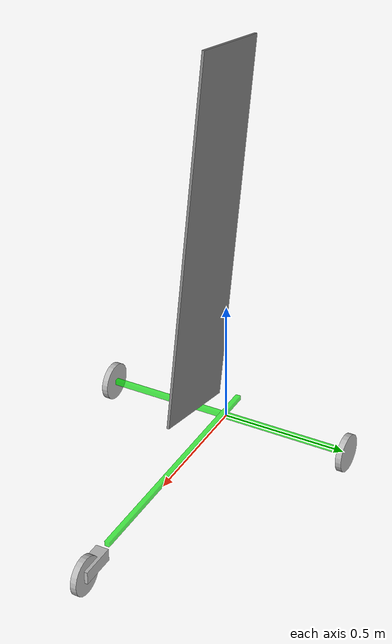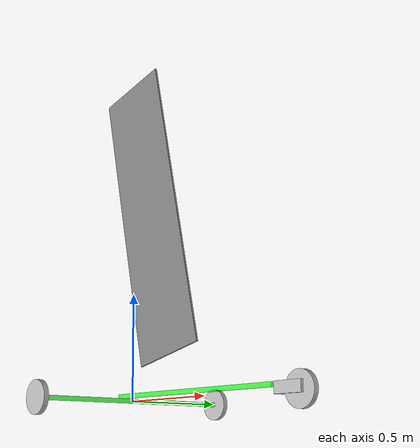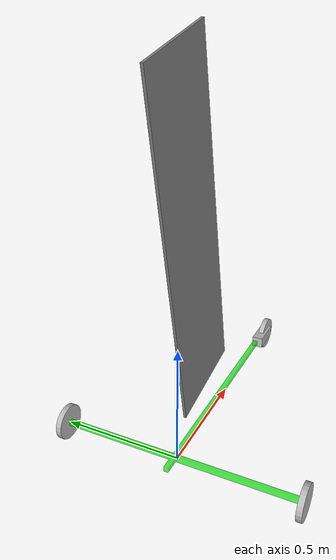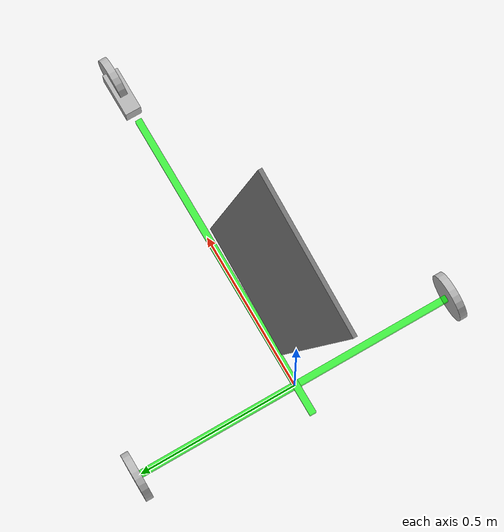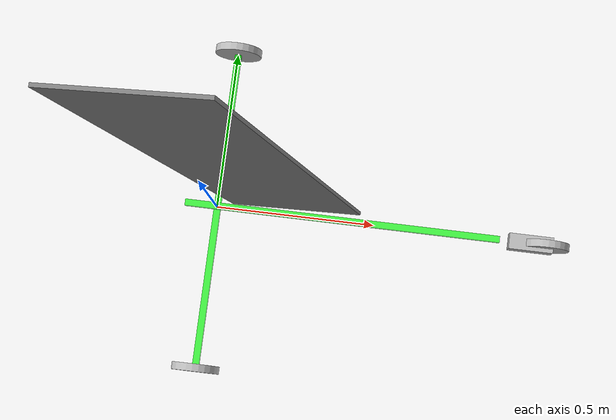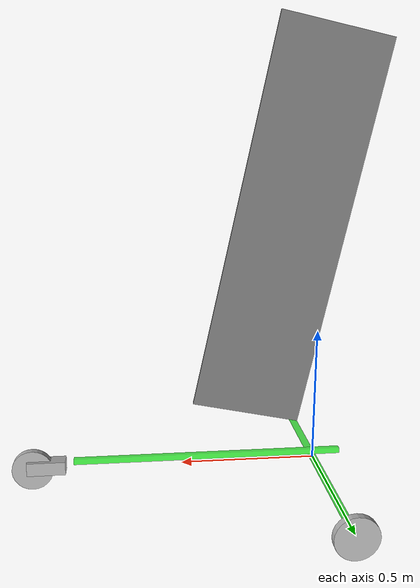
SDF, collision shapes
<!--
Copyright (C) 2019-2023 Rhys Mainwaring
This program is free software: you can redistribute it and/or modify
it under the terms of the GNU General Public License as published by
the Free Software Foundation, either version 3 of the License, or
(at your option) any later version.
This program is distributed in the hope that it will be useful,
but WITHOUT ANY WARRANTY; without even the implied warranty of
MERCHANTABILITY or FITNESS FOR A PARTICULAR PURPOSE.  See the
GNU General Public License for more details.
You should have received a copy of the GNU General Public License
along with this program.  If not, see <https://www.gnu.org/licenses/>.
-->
<?xml version="1.0"?>
<sdf version="1.6">
  <model name="land_yacht">

    <!-- Land yacht base -->
    <include>
      <uri>model://land_yacht_base</uri>
      <name>land_yacht_base</name>
      <pose>0 0 0 0 0 0</pose>
    </include>

    <!-- Main sail -->
    <include>
      <pose>0.5 0 0.04 0 -0.20943951 0</pose>
      <uri>model://main_sail_ly01</uri>
      <name>main_sail</name>
    </include>

    <joint type="revolute" name="main_sail_joint">
      <pose relative_to="main_sail::main_sail_link">0 0 0 0 0 0</pose>
      <child>main_sail::main_sail_link</child>
      <parent>land_yacht_base::base_link</parent>
      <axis>
        <xyz>0 0 1</xyz>
        <dynamics>
          <damping>0.01</damping>
        </dynamics>
        <limit>
          <lower>-1.570796326</lower>
          <upper>1.570796326</upper>
        </limit>
      </axis>
      <sensor name="force_torque_sensor" type="force_torque">
        <always_on>true</always_on>
        <update_rate>30</update_rate>
        <visualize>false</visualize>
      </sensor>
    </joint>

  </model>
</sdf>

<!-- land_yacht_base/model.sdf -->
<sdf version="1.6">
  <model name="land_yacht_base">

    <!-- Base -->
    <link name="base_link">
      <!-- Main beam -->
      <visual name="base">
        <geometry>
          <mesh>
            <uri>model://land_yacht_base/meshes/land_yacht_base.dae</uri>
          </mesh>
        </geometry>
      </visual>

      <!-- Main beam -->
      <collision name="main_beam_collision">
        <pose>0.4 0 0.025 0 0 0</pose>
        <geometry>
          <box>
            <size>1.0 0.020 0.020</size>
          </box>
        </geometry>
      </collision>

      <!-- Cross beam -->
      <collision name="cross_beam_collision">
        <pose>0 0 0 0 0 0</pose>
        <geometry>
          <box>
            <size>0.020 1.0 0.020</size>
          </box>
        </geometry>
      </collision>

      <visual name="imu_visual">
        <pose>0.05 0 0.06 0 0 0</pose>
        <geometry>
          <box>
            <size>0.06 0.04 0.01</size>
          </box>
        </geometry>
        <material>
          <ambient>0.0 1.0 0.0 0.7</ambient>
          <diffuse>0.0 1.0 0.0 0.7</diffuse>
          <specular>0.1 0.1 0.1 0.7</specular>
        </material>
      </visual>

      <sensor name="imu_sensor" type="imu">
        <pose>0.05 0 0.06 3.141593 0 0</pose>
        <always_on>1</always_on>
        <update_rate>1000</update_rate>
        <visualize>1</visualize>
      </sensor>

      <visual name="anemometer_visual">
        <pose>0.67 0 0.5165 0 0 0</pose>
        <geometry>
          <cylinder>
            <radius>0.034</radius>
            <length>0.04</length>
          </cylinder>
        </geometry>
        <material>
          <ambient>0.0 1.0 0.0 0.7</ambient>
          <diffuse>0.0 1.0 0.0 0.7</diffuse>
          <specular>0.1 0.1 0.1 0.7</specular>
        </material>
      </visual>

      <sensor name="anemometer" type="custom" gz:type="anemometer">
        <pose>0.67 0 0.5165 0 0 0</pose>
        <always_on>1</always_on>
        <update_rate>30</update_rate>
        <gz:anemometer>
          <noise type="gaussian">
            <mean>0</mean>
            <stddev>0</stddev>
          </noise>
        </gz:anemometer>
      </sensor>

      <inertial>
        <pose>0.15 0 0.04 0 0 0</pose>
        <mass>3.544</mass>
        <inertia>
          <ixx>0.008623733</ixx>
          <ixy>0</ixy>
          <iyy>0.019521533</iyy>
          <iyz>0</iyz>
          <izz>0.026018867</izz>
        </inertia>
      </inertial>
    </link>

    <!-- Right wheel -->
    <link name="right_wheel_link">
      <pose>0 -0.512 0 1.570796327 0 0</pose>
      <visual name="right_wheel_visual">
        <geometry>
          <mesh>
            <uri>model://land_yacht_base/meshes/sand_wheel.dae</uri>
          </mesh>
        </geometry>
      </visual>
      <collision name="right_wheel_collision">
        <geometry>
          <cylinder>
            <radius>0.0750</radius>
            <length>0.0235</length>
          </cylinder>
        </geometry>
      </collision>
      <inertial>
        <mass>0.112</mass>
        <inertia>
          <ixx>0.000162654</ixx>
          <ixy>0</ixy>
          <iyy>0.000162654</iyy>
          <iyz>0</iyz>
          <izz>0.000315</izz>
        </inertia>
      </inertial>
    </link>

    <joint type="revolute" name="right_wheel_joint">
      <pose>0 0 0 0 0 0</pose>
      <child>right_wheel_link</child>
      <parent>base_link</parent>
      <axis>
        <xyz>0 0 1</xyz>
        <dynamics>
          <damping>0.001</damping>
        </dynamics>
        <limit>
          <lower>-1.0E8</lower>
          <upper>1.0E8</upper>
        </limit>
      </axis>
    </joint>

    <!-- Left wheel -->
    <link name="left_wheel_link">
      <pose>0 0.512 0 1.570796327 0 0</pose>
      <visual name="left_wheel_visual">
        <geometry>
          <mesh>
            <uri>model://land_yacht_base/meshes/sand_wheel.dae</uri>
          </mesh>
        </geometry>
      </visual>
      <collision name="left_wheel_collision">
        <geometry>
          <cylinder>
            <radius>0.0750</radius>
            <length>0.0235</length>
          </cylinder>
        </geometry>
      </collision>
      <inertial>
        <mass>0.112</mass>
        <inertia>
          <ixx>0.000162654</ixx>
          <ixy>0</ixy>
          <iyy>0.000162654</iyy>
          <iyz>0</iyz>
          <izz>0.000315</izz>
        </inertia>
      </inertial>
    </link>

    <joint type="revolute" name="left_wheel_joint">
      <pose>0 0 0 0 0 0</pose>
      <child>left_wheel_link</child>
      <parent>base_link</parent>
      <axis>
        <xyz>0 0 1</xyz>
        <dynamics>
          <damping>0.001</damping>
        </dynamics>
        <limit>
          <lower>-1.0E8</lower>
          <upper>1.0E8</upper>
        </limit>
      </axis>
    </joint>

    <!-- Steering unit -->
    <link name="steering_link">
      <pose>1.05 0 0 0 0 0</pose>

      <visual name="steering_visual">
        <pose>0 0 0 0 0 0</pose>
        <geometry>
          <mesh>
            <uri>model://land_yacht_base/meshes/land_yacht_forks_v4.dae</uri>
          </mesh>
        </geometry>
      </visual>
      <collision name="steering_collision">
        <pose>-0.05 0 0.01 0 0 0</pose>
        <geometry>
          <box>
            <size>0.14 0.05 0.05</size>
          </box>
        </geometry>
      </collision>

      <inertial>
        <pose>-0.05 0 0.01 0 0 0</pose>
        <mass>0.073</mass>
        <inertia>
          <ixx>3.04167E-05</ixx>
          <ixy>0</ixy>
          <iyy>0.000134442</iyy>
          <iyz>0</iyz>
          <izz>0.000134442</izz>
        </inertia>
      </inertial>
    </link>

    <joint type="revolute" name="steering_joint">
      <pose>-0.114 0 0.045 0 0 0</pose>
      <child>steering_link</child>
      <parent>base_link</parent>
      <axis>
        <xyz>-1 0 0.700207538</xyz>
        <dynamics>
          <damping>0.01</damping>
        </dynamics>
        <limit>
          <lower>-0.8</lower>
          <upper>0.8</upper>
        </limit>
      </axis>
    </joint>

    <!-- Front wheel -->
    <link name="front_wheel_link">
      <pose>1.05 0 0 1.570796327 0 0</pose>
      <visual name="front_wheel_visual">
        <geometry>
          <mesh>
            <uri>model://land_yacht_base/meshes/sand_wheel.dae</uri>
          </mesh>
        </geometry>
      </visual>
      <collision name="front_wheel_collision">
        <geometry>
          <cylinder>
            <radius>0.0750</radius>
            <length>0.0235</length>
          </cylinder>
        </geometry>
        <surface>
          <friction>
            <ode>
              <mu>1.0</mu>
              <mu2>1.0</mu2>
              <fdir1>1 0 0</fdir1>
            </ode>
          </friction>
        </surface>
      </collision>
      <inertial>
        <mass>0.112</mass>
        <inertia>
          <ixx>0.000162654</ixx>
          <ixy>0</ixy>
          <iyy>0.000162654</iyy>
          <iyz>0</iyz>
          <izz>0.000315</izz>
        </inertia>
      </inertial>
    </link>

    <joint type="revolute" name="front_wheel_joint">
      <pose>0 0 0 0 0 0</pose>
      <child>front_wheel_link</child>
      <parent>steering_link</parent>
      <axis>
        <xyz>0 0 1</xyz>
        <dynamics>
          <damping>0.01</damping>
        </dynamics>
        <limit>
          <lower>-1.0E8</lower>
          <upper>1.0E8</upper>
        </limit>
      </axis>
      <sensor name="force_torque_sensor" type="force_torque">
        <always_on>true</always_on>
        <update_rate>30</update_rate>
        <visualize>true</visualize>
      </sensor>
    </joint>

    <!-- Thruster -->

  </model>
</sdf>

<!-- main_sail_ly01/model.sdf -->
<sdf version="1.6">
  <model name="main_sail_ly01">

    <!-- Plugins -->
    <plugin name="gz::sim::systems::SailLiftDrag"
        filename="asv_sim2-sail-lift-drag-system">
      <a0>0.0</a0>
      <cla>6.2832</cla>
      <alpha_stall>0.1592</alpha_stall>
      <cla_stall>-0.7083</cla_stall>
      <cda>0.63662</cda>
      <area>0.4858</area>
      <fluid_density>1.2</fluid_density>
      <forward>1 0 0</forward>
      <upward>0 1 0</upward>
      <cp>-0.15 0.0 0.75</cp>
      <link_name>main_sail_link</link_name>
      <radial_symmetry>true</radial_symmetry>
      <topic>lift_drag</topic>
    </plugin>

    <!-- Main sail-->
    <link name="main_sail_link">
      <inertial>
        <pose>-0.15 0.0 0.75 0 0 0</pose>
        <mass>0.5</mass>
        <inertia>
          <ixx>0.081670833</ixx>
          <ixy>0</ixy>
          <iyy>0.088333333</iyy>
          <iyz>0</iyz>
          <izz>0.006670833</izz>
        </inertia>
      </inertial>
      <collision name="sail_collision">
        <pose>-0.2 0 0.9 0 0 0</pose>
        <geometry>
          <box>
            <size>0.4 0.01 1.4</size>
          </box>
        </geometry>
      </collision>
      <visual name="rig_visual">
        <geometry>
          <mesh>
            <uri>model://main_sail_ly01/meshes/land_yacht_rig.dae</uri>
          </mesh>
        </geometry>
      </visual>
      <visual name="sail_visual">
        <pose>-0.01 0 0.12 0 0.20943951 0</pose>
        <geometry>
          <mesh>
            <uri>model://main_sail_ly01/meshes/land_yacht_flat_sail.stl</uri>
          </mesh>
        </geometry>
        <material>
          <ambient>0.5 0.5 0.5 0.9</ambient>
          <diffuse>0.5 0.5 0.5 0.9</diffuse>
          <specular>0.1 0.1 0.1 0.9</specular>
        </material>
      </visual>
      <visual name="cp_visual">
        <pose>-0.15 0.0 0.75 0 0 0</pose>
        <geometry>
          <sphere>
            <radius>0.01</radius>
          </sphere>
        </geometry>
        <material>
          <ambient>1.0 0.0 0.0 1.0</ambient>
          <diffuse>1.0 0.0 0.0 1.0</diffuse>
          <specular>0.1 0.1 0.1 1.0</specular>
        </material>
      </visual>
    </link>

  </model>
</sdf>
